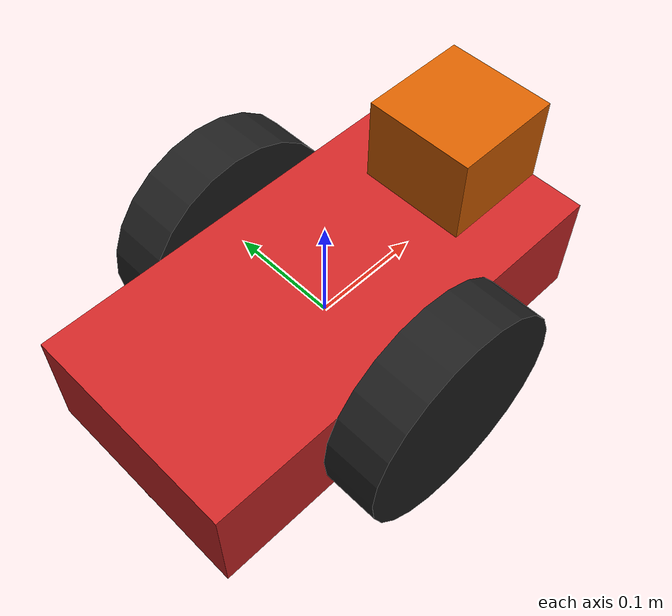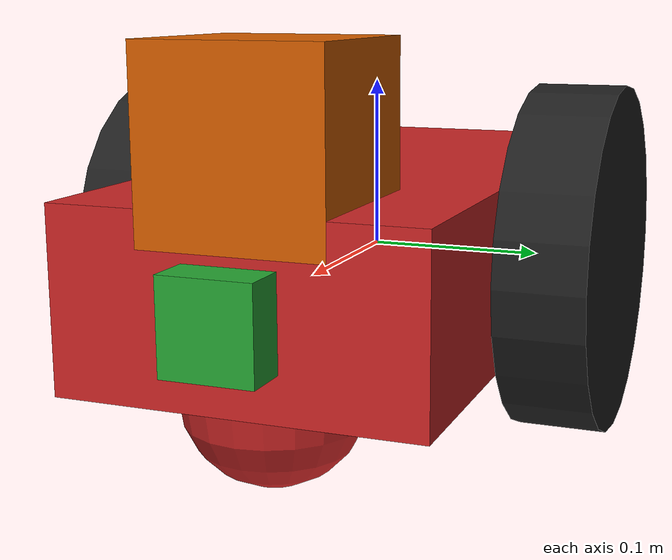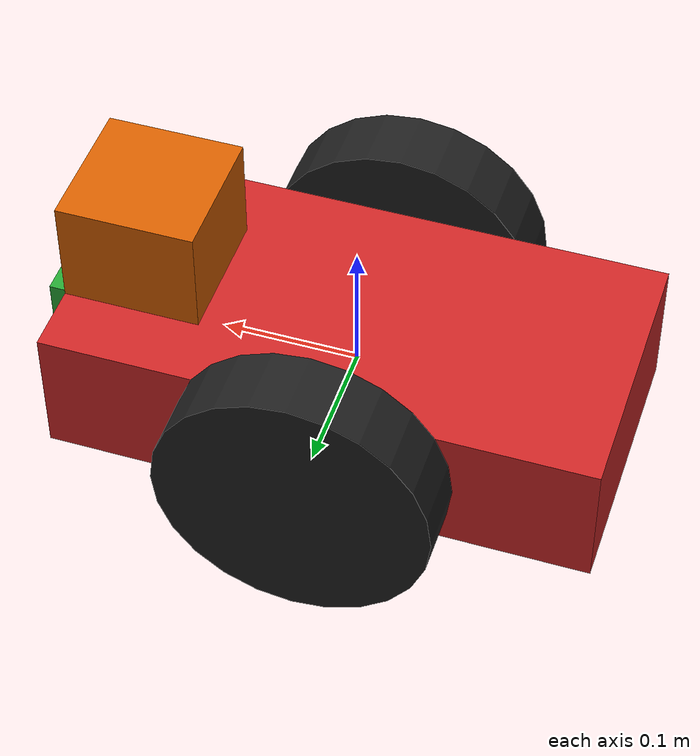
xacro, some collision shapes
<robot name="my_robot" xmlns:xacro="http://www.ros.org/wiki/xacro">

  <!--MY GAZEBO PLUGINS-->

  <xacro:include filename="$(find my_robot)/urdf/my_robot.gazebo" />

  <!--MY GAZEBO PLUGINS-->

  <!--MY ROBOT COLORS-->

  <gazebo reference = "chassis">
    <material>Gazebo/Red</material>
  </gazebo>

  <gazebo reference = "LEFT_wheel">
    <material>Gazebo/FlatBlack</material>
  </gazebo>

  <gazebo reference = "RIGHT_wheel">
    <material>Gazebo/FlatBlack</material>
  </gazebo>

  <gazebo reference = "camera">
    <material>Gazebo/Green</material>
  </gazebo>

  <!--MY ROBOT COLORS-->

  <link name="robot_footprint"></link>

  <joint name="robot_footprint_joint" type="fixed">
    <origin xyz="0 0 0" rpy="0 0 0" />
    <parent link="robot_footprint"/>
    <child link="chassis" />
  </joint>

  <link name='chassis'>
    <pose>0 0 0.1 0 0 0</pose>

    <inertial>
      <mass value="15.0"/>
      <origin xyz="0.0 0 0" rpy=" 0 0 0"/>
      <inertia
          ixx="0.1" ixy="0" ixz="0"
          iyy="0.1" iyz="0"
          izz="0.1"
      />
    </inertial>

    <collision name='collision'>
      <origin xyz="0 0 0" rpy=" 0 0 0"/>
      <geometry>
        <box size=".4 .2 .1"/>
      </geometry>
    </collision>

    <visual name='chassis_visual'>
      <origin xyz="0 0 0" rpy=" 0 0 0"/>
      <geometry>
        <box size=".4 .2 .1"/>
      </geometry>
    </visual>

    <collision name='back_caster_collision'>
      <origin xyz="-0.15 0 -0.05" rpy=" 0 0 0"/>
      <geometry>
        <sphere radius="0.0511"/>
      </geometry>
    </collision>

    <visual name='back_caster_visual'>
      <origin xyz="-0.15 0 -0.05" rpy=" 0 0 0"/>
      <geometry>
        <sphere radius="0.05"/>
      </geometry>
    </visual>

    <collision name='front_caster_collision'>
      <origin xyz="0.15 0 -0.05" rpy=" 0 0 0"/>
      <geometry>
        <sphere radius="0.0511"/>
      </geometry>
    </collision>

    <visual name='front_caster_visual'>
      <origin xyz="0.15 0 -0.05" rpy=" 0 0 0"/>
      <geometry>
        <sphere radius="0.05"/>
      </geometry>
    </visual>

  </link>

  <!--MY LEFT Link and JOINT-->

  <link name='LEFT_wheel'>
    <pose>0 0 0.1 0 0 0</pose>

    <inertial>
      <mass value="5"/>
      <origin xyz="0.0 0 0" rpy=" 0 1.5707 1.5707"/>
      <inertia
          ixx="0.1" ixy="0" ixz="0"
          iyy="0.1" iyz="0"
          izz="0.1"
      />
    </inertial>

    <collision name='LEFT_wheel_collision'>
      <origin xyz="0 0 0" rpy=" 0 1.5707 1.5707"/>
      <geometry>
        <cylinder length="0.05" radius="0.1"/>
      </geometry>
    </collision>

    <visual name='LEFT_wheel_visual'>
      <origin xyz="0.0 0 0" rpy=" 0 1.5707 1.5707"/>
      <geometry>
        <cylinder length="0.05" radius="0.1"/>
      </geometry>
    </visual>

  </link>

  <joint type="continuous" name="left_wheel_hinge">
    <origin xyz="0 0.125 0" rpy="0 0 0"/>
    <child link="LEFT_wheel"/>
    <parent link="chassis"/>
    <axis xyz="0 1 0" rpy="0 0 0"/>
    <limit effort="10000" velocity="1000"/>
    <dynamics damping="1.0" friction="1.0"/>
  </joint>

  <!--MY LEFT Link and JOINT-->

  <!--MY RIGHT Link and JOINT-->

  <link name='RIGHT_wheel'>
    <pose>0 0 0.1 0 0 0</pose>

    <inertial>
      <mass value="5"/>
      <origin xyz="0.0 0 0" rpy=" 0 1.5707 1.5707"/>
      <inertia
          ixx="0.1" ixy="0" ixz="0"
          iyy="0.1" iyz="0"
          izz="0.1"
      />
    </inertial>

    <collision name='RIGHT_wheel_collision'>
      <origin xyz="0 0 0" rpy=" 0 2.3562 2.3562"/>
      <geometry>
        <cylinder length="0.05" radius="0.1"/>
      </geometry>
    </collision>

    <visual name='RIGHT_wheel_visual'>
      <origin xyz="0.0 0 0" rpy=" 0 1.5707 1.5707"/>
      <geometry>
        <cylinder length="0.05" radius="0.1"/>
      </geometry>
    </visual>

  </link>

  <joint type="continuous" name="right_wheel_hinge">
    <origin xyz="0 -0.125 0" rpy="0 0 0"/>
    <child link="RIGHT_wheel"/>
    <parent link="chassis"/>
    <axis xyz="0 1 0" rpy="0 0 0"/>
    <limit effort="10000" velocity="1000"/>
    <dynamics damping="1.0" friction="1.0"/>
  </joint>

  <!--MY RIGHT Link and JOINT-->

  <!--MY CAMERA Link and JOINT-->

  <link name='camera'>
    <pose>0 0 0 0 0 0</pose>

    <inertial>
      <mass value="0.1"/>
      <origin xyz="0.05 0.05 0.05" rpy=" 0 0 0"/>
      <inertia
          ixx="1e-6" ixy="0" ixz="0"
          iyy="1e-6" iyz="0"
          izz="1e-6"
      />
    </inertial>

    <collision name='camera_collision'>
      <origin xyz="0 0 0" rpy=" 0 0 0"/>
      <geometry>
        <box size="0.1 0.1 0.1"/>
      </geometry>
    </collision>

    <visual name='camera_visual'>
      <origin xyz="0 0 0" rpy=" 0 0 0"/>
      <geometry>
        <box size="0.05 0.05 0.05"/>
      </geometry>
    </visual>

  </link>

  <joint type="fixed" name="camera_joint">
    <origin xyz="0.2 0 0" rpy="0 0 0"/>
    <child link="camera"/>
    <parent link="chassis"/>
    <axis xyz="0 1 0" rpy="0 0 0"/>
    <limit effort="10000" velocity="1000"/>
    <dynamics damping="1.0" friction="1.0"/>
  </joint>

  <!--MY CAMERA Link and JOINT-->

  <!--MY HOKUYO Link and JOINT-->

  <link name='hokuyo'>
    <pose>0 0 0 0 0 0</pose>

    <inertial>
      <mass value="1e-5"/>
      <origin xyz="0 0 0" rpy=" 0 0 0"/>
      <inertia
          ixx="1e-6" ixy="0" ixz="0"
          iyy="1e-6" iyz="0"
          izz="1e-6"
      />
    </inertial>

    <collision name='hokuyo_collision'>
      <origin xyz="0 0 0" rpy=" 0 0 0"/>
      <geometry>
        <box size="0.1 0.1 0.1"/>
      </geometry>
    </collision>

    <visual name='hokuyo_visual'>
      <origin xyz="0 0 0" rpy=" 0 0 0"/>
      <geometry>
        <mesh filename="package://my_robot/meshes/hokuyo.dae"/>
      </geometry>
    </visual>

  </link>

  <joint type="fixed" name="hokuyo_joint">
    <origin xyz="0.15 0 0.08" rpy="0 0 0"/>
    <child link="hokuyo"/>
    <parent link="chassis"/>
    <axis xyz="0 1 0" rpy="0 0 0"/>
    <limit effort="10000" velocity="1000"/>
    <dynamics damping="1.0" friction="1.0"/>
  </joint>

  <!--MY HOKUYO Link and JOINT-->

</robot>
